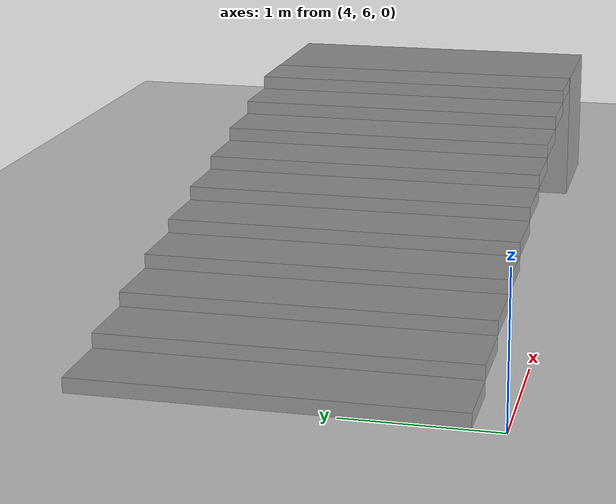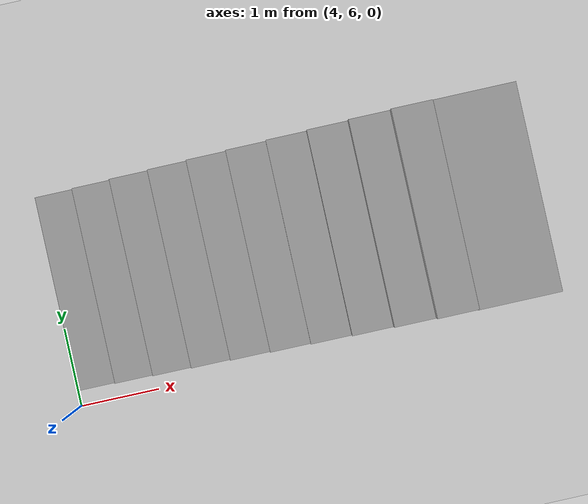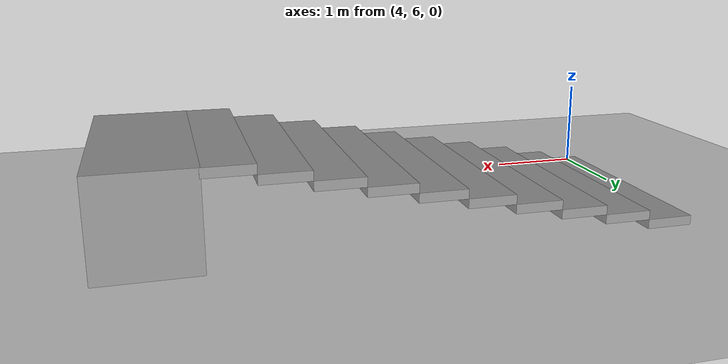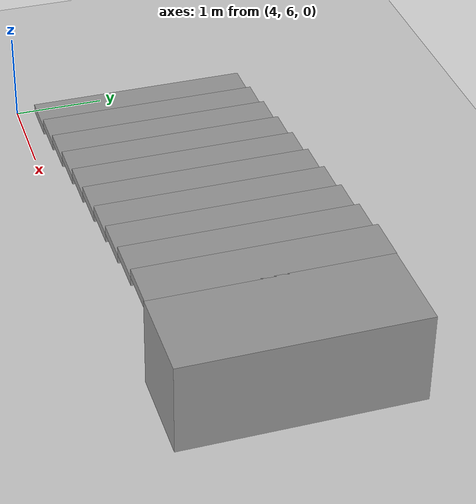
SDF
<sdf version="1.7">
 <world name="default">
  <model name="ground_plane">
   <static>1</static>
   <link name="link">
    <collision name="collision">
     <geometry><plane><normal>0 0 1</normal><size>100 100</size></plane></geometry>
     <surface>
      <contact><collide_bitmask>65535</collide_bitmask></contact>
      <friction><ode><mu>100</mu><mu2>50</mu2></ode></friction>
     </surface>
    </collision>
    <visual name="visual">
     <cast_shadows>0</cast_shadows>
     <geometry><plane><normal>0 0 1</normal><size>100 100</size></plane></geometry>
     <material>
      <script><uri>file://media/materials/scripts/gazebo.material</uri><name>Gazebo/Grey</name></script>
     </material>
    </visual>
   </link>
  </model>
  <model name="deepStairs">
   <link name="Stairs_3">
    <visual name="Stairs_3_Visual_0">
     <pose>1.454 4.7365 0.05 0 -0 0</pose>
     <geometry><box><size>2.5 0.5 0.1</size></box></geometry>
     <material>
      <script><uri>file://media/materials/scripts/gazebo.material</uri><name>Gazebo/Grey</name></script>
      <ambient>1 1 1 1</ambient>
      <shader type="pixel"/>
     </material>
     <meta><layer>0</layer></meta>
    </visual>
    <visual name="Stairs_3_Visual_1">
     <pose>1.454 4.2365 0.15 0 -0 0</pose>
     <geometry><box><size>2.5 0.5 0.1</size></box></geometry>
     <material>
      <script><uri>file://media/materials/scripts/gazebo.material</uri><name>Gazebo/Grey</name></script>
      <ambient>1 1 1 1</ambient>
      <shader type="pixel"/>
     </material>
     <meta><layer>0</layer></meta>
    </visual>
    <visual name="Stairs_3_Visual_2">
     <pose>1.454 3.7365 0.25 0 -0 0</pose>
     <geometry><box><size>2.5 0.5 0.1</size></box></geometry>
     <material>
      <script><uri>file://media/materials/scripts/gazebo.material</uri><name>Gazebo/Grey</name></script>
      <ambient>1 1 1 1</ambient>
      <shader type="pixel"/>
     </material>
     <meta><layer>0</layer></meta>
    </visual>
    <visual name="Stairs_3_Visual_3">
     <pose>1.454 3.2365 0.35 0 -0 0</pose>
     <geometry><box><size>2.5 0.5 0.1</size></box></geometry>
     <material>
      <script><uri>file://media/materials/scripts/gazebo.material</uri><name>Gazebo/Grey</name></script>
      <ambient>1 1 1 1</ambient>
      <shader type="pixel"/>
     </material>
     <meta><layer>0</layer></meta>
    </visual>
    <visual name="Stairs_3_Visual_4">
     <pose>1.454 2.7365 0.45 0 -0 0</pose>
     <geometry><box><size>2.5 0.5 0.1</size></box></geometry>
     <material>
      <script><uri>file://media/materials/scripts/gazebo.material</uri><name>Gazebo/Grey</name></script>
      <ambient>1 1 1 1</ambient>
      <shader type="pixel"/>
     </material>
     <meta><layer>0</layer></meta>
    </visual>
    <visual name="Stairs_3_Visual_5">
     <pose>1.454 2.2365 0.55 0 -0 0</pose>
     <geometry><box><size>2.5 0.5 0.1</size></box></geometry>
     <material>
      <script><uri>file://media/materials/scripts/gazebo.material</uri><name>Gazebo/Grey</name></script>
      <ambient>1 1 1 1</ambient>
      <shader type="pixel"/>
     </material>
     <meta><layer>0</layer></meta>
    </visual>
    <visual name="Stairs_3_Visual_6">
     <pose>1.454 1.7365 0.65 0 -0 0</pose>
     <geometry><box><size>2.5 0.5 0.1</size></box></geometry>
     <material>
      <script><uri>file://media/materials/scripts/gazebo.material</uri><name>Gazebo/Grey</name></script>
      <ambient>1 1 1 1</ambient>
      <shader type="pixel"/>
     </material>
     <meta><layer>0</layer></meta>
    </visual>
    <visual name="Stairs_3_Visual_7">
     <pose>1.454 1.2365 0.75 0 -0 0</pose>
     <geometry><box><size>2.5 0.5 0.1</size></box></geometry>
     <material>
      <script><uri>file://media/materials/scripts/gazebo.material</uri><name>Gazebo/Grey</name></script>
      <ambient>1 1 1 1</ambient>
      <shader type="pixel"/>
     </material>
     <meta><layer>0</layer></meta>
    </visual>
    <visual name="Stairs_3_Visual_8">
     <pose>1.454 0.7365 0.85 0 -0 0</pose>
     <geometry><box><size>2.5 0.5 0.1</size></box></geometry>
     <material>
      <script><uri>file://media/materials/scripts/gazebo.material</uri><name>Gazebo/Grey</name></script>
      <ambient>1 1 1 1</ambient>
      <shader type="pixel"/>
     </material>
     <meta><layer>0</layer></meta>
    </visual>
    <visual name="Stairs_3_Visual_9">
     <pose>1.454 0.2365 0.95 0 -0 0</pose>
     <geometry><box><size>2.5 0.5 0.1</size></box></geometry>
     <material>
      <script><uri>file://media/materials/scripts/gazebo.material</uri><name>Gazebo/Grey</name></script>
      <ambient>1 1 1 1</ambient>
      <shader type="pixel"/>
     </material>
     <meta><layer>0</layer></meta>
    </visual>
    <collision name="Stairs_3_Collision_0">
     <pose>1.454 4.7365 0.05 0 -0 0</pose>
     <geometry><box><size>2.5 0.5 0.1</size></box></geometry>
     <surface>
      <friction>
       <ode><mu>1</mu><mu2>1</mu2><fdir1>0 0 0</fdir1><slip1>0</slip1><slip2>0</slip2></ode>
       <torsional>
        <coefficient>1</coefficient>
        <patch_radius>0</patch_radius>
        <surface_radius>0</surface_radius>
        <use_patch_radius>1</use_patch_radius>
        <ode><slip>0</slip></ode>
       </torsional>
      </friction>
      <bounce><restitution_coefficient>0</restitution_coefficient><threshold>1e+06</threshold></bounce>
      <contact>
       <collide_without_contact>0</collide_without_contact>
       <collide_without_contact_bitmask>1</collide_without_contact_bitmask>
       <collide_bitmask>1</collide_bitmask>
       <ode>
        <soft_cfm>0</soft_cfm>
        <soft_erp>0.2</soft_erp>
        <kp>1e+13</kp>
        <kd>1</kd>
        <max_vel>0.01</max_vel>
        <min_depth>0</min_depth>
       </ode>
       <bullet>
        <split_impulse>1</split_impulse>
        <split_impulse_penetration_threshold>-0.01</split_impulse_penetration_threshold>
        <soft_cfm>0</soft_cfm>
        <soft_erp>0.2</soft_erp>
        <kp>1e+13</kp>
        <kd>1</kd>
       </bullet>
      </contact>
     </surface>
    </collision>
    <collision name="Stairs_3_Collision_1">
     <pose>1.454 4.2365 0.15 0 -0 0</pose>
     <geometry><box><size>2.5 0.5 0.1</size></box></geometry>
     <surface>
      <friction>
       <ode><mu>1</mu><mu2>1</mu2><fdir1>0 0 0</fdir1><slip1>0</slip1><slip2>0</slip2></ode>
       <torsional>
        <coefficient>1</coefficient>
        <patch_radius>0</patch_radius>
        <surface_radius>0</surface_radius>
        <use_patch_radius>1</use_patch_radius>
        <ode><slip>0</slip></ode>
       </torsional>
      </friction>
      <bounce><restitution_coefficient>0</restitution_coefficient><threshold>1e+06</threshold></bounce>
      <contact>
       <collide_without_contact>0</collide_without_contact>
       <collide_without_contact_bitmask>1</collide_without_contact_bitmask>
       <collide_bitmask>1</collide_bitmask>
       <ode>
        <soft_cfm>0</soft_cfm>
        <soft_erp>0.2</soft_erp>
        <kp>1e+13</kp>
        <kd>1</kd>
        <max_vel>0.01</max_vel>
        <min_depth>0</min_depth>
       </ode>
       <bullet>
        <split_impulse>1</split_impulse>
        <split_impulse_penetration_threshold>-0.01</split_impulse_penetration_threshold>
        <soft_cfm>0</soft_cfm>
        <soft_erp>0.2</soft_erp>
        <kp>1e+13</kp>
        <kd>1</kd>
       </bullet>
      </contact>
     </surface>
    </collision>
    <collision name="Stairs_3_Collision_2">
     <pose>1.454 3.7365 0.25 0 -0 0</pose>
     <geometry><box><size>2.5 0.5 0.1</size></box></geometry>
     <surface>
      <friction>
       <ode><mu>1</mu><mu2>1</mu2><fdir1>0 0 0</fdir1><slip1>0</slip1><slip2>0</slip2></ode>
       <torsional>
        <coefficient>1</coefficient>
        <patch_radius>0</patch_radius>
        <surface_radius>0</surface_radius>
        <use_patch_radius>1</use_patch_radius>
        <ode><slip>0</slip></ode>
       </torsional>
      </friction>
      <bounce><restitution_coefficient>0</restitution_coefficient><threshold>1e+06</threshold></bounce>
      <contact>
       <collide_without_contact>0</collide_without_contact>
       <collide_without_contact_bitmask>1</collide_without_contact_bitmask>
       <collide_bitmask>1</collide_bitmask>
       <ode>
        <soft_cfm>0</soft_cfm>
        <soft_erp>0.2</soft_erp>
        <kp>1e+13</kp>
        <kd>1</kd>
        <max_vel>0.01</max_vel>
        <min_depth>0</min_depth>
       </ode>
       <bullet>
        <split_impulse>1</split_impulse>
        <split_impulse_penetration_threshold>-0.01</split_impulse_penetration_threshold>
        <soft_cfm>0</soft_cfm>
        <soft_erp>0.2</soft_erp>
        <kp>1e+13</kp>
        <kd>1</kd>
       </bullet>
      </contact>
     </surface>
    </collision>
    <collision name="Stairs_3_Collision_3">
     <pose>1.454 3.2365 0.35 0 -0 0</pose>
     <geometry><box><size>2.5 0.5 0.1</size></box></geometry>
     <surface>
      <friction>
       <ode><mu>1</mu><mu2>1</mu2><fdir1>0 0 0</fdir1><slip1>0</slip1><slip2>0</slip2></ode>
       <torsional>
        <coefficient>1</coefficient>
        <patch_radius>0</patch_radius>
        <surface_radius>0</surface_radius>
        <use_patch_radius>1</use_patch_radius>
        <ode><slip>0</slip></ode>
       </torsional>
      </friction>
      <bounce><restitution_coefficient>0</restitution_coefficient><threshold>1e+06</threshold></bounce>
      <contact>
       <collide_without_contact>0</collide_without_contact>
       <collide_without_contact_bitmask>1</collide_without_contact_bitmask>
       <collide_bitmask>1</collide_bitmask>
       <ode>
        <soft_cfm>0</soft_cfm>
        <soft_erp>0.2</soft_erp>
        <kp>1e+13</kp>
        <kd>1</kd>
        <max_vel>0.01</max_vel>
        <min_depth>0</min_depth>
       </ode>
       <bullet>
        <split_impulse>1</split_impulse>
        <split_impulse_penetration_threshold>-0.01</split_impulse_penetration_threshold>
        <soft_cfm>0</soft_cfm>
        <soft_erp>0.2</soft_erp>
        <kp>1e+13</kp>
        <kd>1</kd>
       </bullet>
      </contact>
     </surface>
    </collision>
    <collision name="Stairs_3_Collision_4">
     <pose>1.454 2.7365 0.45 0 -0 0</pose>
     <geometry><box><size>2.5 0.5 0.1</size></box></geometry>
     <surface>
      <friction>
       <ode><mu>1</mu><mu2>1</mu2><fdir1>0 0 0</fdir1><slip1>0</slip1><slip2>0</slip2></ode>
       <torsional>
        <coefficient>1</coefficient>
        <patch_radius>0</patch_radius>
        <surface_radius>0</surface_radius>
        <use_patch_radius>1</use_patch_radius>
        <ode><slip>0</slip></ode>
       </torsional>
      </friction>
      <bounce><restitution_coefficient>0</restitution_coefficient><threshold>1e+06</threshold></bounce>
      <contact>
       <collide_without_contact>0</collide_without_contact>
       <collide_without_contact_bitmask>1</collide_without_contact_bitmask>
       <collide_bitmask>1</collide_bitmask>
       <ode>
        <soft_cfm>0</soft_cfm>
        <soft_erp>0.2</soft_erp>
        <kp>1e+13</kp>
        <kd>1</kd>
        <max_vel>0.01</max_vel>
        <min_depth>0</min_depth>
       </ode>
       <bullet>
        <split_impulse>1</split_impulse>
        <split_impulse_penetration_threshold>-0.01</split_impulse_penetration_threshold>
        <soft_cfm>0</soft_cfm>
        <soft_erp>0.2</soft_erp>
        <kp>1e+13</kp>
        <kd>1</kd>
       </bullet>
      </contact>
     </surface>
    </collision>
    <collision name="Stairs_3_Collision_5">
     <pose>1.454 2.2365 0.55 0 -0 0</pose>
     <geometry><box><size>2.5 0.5 0.1</size></box></geometry>
     <surface>
      <friction>
       <ode><mu>1</mu><mu2>1</mu2><fdir1>0 0 0</fdir1><slip1>0</slip1><slip2>0</slip2></ode>
       <torsional>
        <coefficient>1</coefficient>
        <patch_radius>0</patch_radius>
        <surface_radius>0</surface_radius>
        <use_patch_radius>1</use_patch_radius>
        <ode><slip>0</slip></ode>
       </torsional>
      </friction>
      <bounce><restitution_coefficient>0</restitution_coefficient><threshold>1e+06</threshold></bounce>
      <contact>
       <collide_without_contact>0</collide_without_contact>
       <collide_without_contact_bitmask>1</collide_without_contact_bitmask>
       <collide_bitmask>1</collide_bitmask>
       <ode>
        <soft_cfm>0</soft_cfm>
        <soft_erp>0.2</soft_erp>
        <kp>1e+13</kp>
        <kd>1</kd>
        <max_vel>0.01</max_vel>
        <min_depth>0</min_depth>
       </ode>
       <bullet>
        <split_impulse>1</split_impulse>
        <split_impulse_penetration_threshold>-0.01</split_impulse_penetration_threshold>
        <soft_cfm>0</soft_cfm>
        <soft_erp>0.2</soft_erp>
        <kp>1e+13</kp>
        <kd>1</kd>
       </bullet>
      </contact>
     </surface>
    </collision>
    <collision name="Stairs_3_Collision_6">
     <pose>1.454 1.7365 0.65 0 -0 0</pose>
     <geometry><box><size>2.5 0.5 0.1</size></box></geometry>
     <surface>
      <friction>
       <ode><mu>1</mu><mu2>1</mu2><fdir1>0 0 0</fdir1><slip1>0</slip1><slip2>0</slip2></ode>
       <torsional>
        <coefficient>1</coefficient>
        <patch_radius>0</patch_radius>
        <surface_radius>0</surface_radius>
        <use_patch_radius>1</use_patch_radius>
        <ode><slip>0</slip></ode>
       </torsional>
      </friction>
      <bounce><restitution_coefficient>0</restitution_coefficient><threshold>1e+06</threshold></bounce>
      <contact>
       <collide_without_contact>0</collide_without_contact>
       <collide_without_contact_bitmask>1</collide_without_contact_bitmask>
       <collide_bitmask>1</collide_bitmask>
       <ode>
        <soft_cfm>0</soft_cfm>
        <soft_erp>0.2</soft_erp>
        <kp>1e+13</kp>
        <kd>1</kd>
        <max_vel>0.01</max_vel>
        <min_depth>0</min_depth>
       </ode>
       <bullet>
        <split_impulse>1</split_impulse>
        <split_impulse_penetration_threshold>-0.01</split_impulse_penetration_threshold>
        <soft_cfm>0</soft_cfm>
        <soft_erp>0.2</soft_erp>
        <kp>1e+13</kp>
        <kd>1</kd>
       </bullet>
      </contact>
     </surface>
    </collision>
    <collision name="Stairs_3_Collision_7">
     <pose>1.454 1.2365 0.75 0 -0 0</pose>
     <geometry><box><size>2.5 0.5 0.1</size></box></geometry>
     <surface>
      <friction>
       <ode><mu>1</mu><mu2>1</mu2><fdir1>0 0 0</fdir1><slip1>0</slip1><slip2>0</slip2></ode>
       <torsional>
        <coefficient>1</coefficient>
        <patch_radius>0</patch_radius>
        <surface_radius>0</surface_radius>
        <use_patch_radius>1</use_patch_radius>
        <ode><slip>0</slip></ode>
       </torsional>
      </friction>
      <bounce><restitution_coefficient>0</restitution_coefficient><threshold>1e+06</threshold></bounce>
      <contact>
       <collide_without_contact>0</collide_without_contact>
       <collide_without_contact_bitmask>1</collide_without_contact_bitmask>
       <collide_bitmask>1</collide_bitmask>
       <ode>
        <soft_cfm>0</soft_cfm>
        <soft_erp>0.2</soft_erp>
        <kp>1e+13</kp>
        <kd>1</kd>
        <max_vel>0.01</max_vel>
        <min_depth>0</min_depth>
       </ode>
       <bullet>
        <split_impulse>1</split_impulse>
        <split_impulse_penetration_threshold>-0.01</split_impulse_penetration_threshold>
        <soft_cfm>0</soft_cfm>
        <soft_erp>0.2</soft_erp>
        <kp>1e+13</kp>
        <kd>1</kd>
       </bullet>
      </contact>
     </surface>
    </collision>
    <collision name="Stairs_3_Collision_8">
     <pose>1.454 0.7365 0.85 0 -0 0</pose>
     <geometry><box><size>2.5 0.5 0.1</size></box></geometry>
     <surface>
      <friction>
       <ode><mu>1</mu><mu2>1</mu2><fdir1>0 0 0</fdir1><slip1>0</slip1><slip2>0</slip2></ode>
       <torsional>
        <coefficient>1</coefficient>
        <patch_radius>0</patch_radius>
        <surface_radius>0</surface_radius>
        <use_patch_radius>1</use_patch_radius>
        <ode><slip>0</slip></ode>
       </torsional>
      </friction>
      <bounce><restitution_coefficient>0</restitution_coefficient><threshold>1e+06</threshold></bounce>
      <contact>
       <collide_without_contact>0</collide_without_contact>
       <collide_without_contact_bitmask>1</collide_without_contact_bitmask>
       <collide_bitmask>1</collide_bitmask>
       <ode>
        <soft_cfm>0</soft_cfm>
        <soft_erp>0.2</soft_erp>
        <kp>1e+13</kp>
        <kd>1</kd>
        <max_vel>0.01</max_vel>
        <min_depth>0</min_depth>
       </ode>
       <bullet>
        <split_impulse>1</split_impulse>
        <split_impulse_penetration_threshold>-0.01</split_impulse_penetration_threshold>
        <soft_cfm>0</soft_cfm>
        <soft_erp>0.2</soft_erp>
        <kp>1e+13</kp>
        <kd>1</kd>
       </bullet>
      </contact>
     </surface>
    </collision>
    <collision name="Stairs_3_Collision_9">
     <pose>1.454 0.2365 0.95 0 -0 0</pose>
     <geometry><box><size>2.5 0.5 0.1</size></box></geometry>
     <surface>
      <friction>
       <ode><mu>1</mu><mu2>1</mu2><fdir1>0 0 0</fdir1><slip1>0</slip1><slip2>0</slip2></ode>
       <torsional>
        <coefficient>1</coefficient>
        <patch_radius>0</patch_radius>
        <surface_radius>0</surface_radius>
        <use_patch_radius>1</use_patch_radius>
        <ode><slip>0</slip></ode>
       </torsional>
      </friction>
      <bounce><restitution_coefficient>0</restitution_coefficient><threshold>1e+06</threshold></bounce>
      <contact>
       <collide_without_contact>0</collide_without_contact>
       <collide_without_contact_bitmask>1</collide_without_contact_bitmask>
       <collide_bitmask>1</collide_bitmask>
       <ode>
        <soft_cfm>0</soft_cfm>
        <soft_erp>0.2</soft_erp>
        <kp>1e+13</kp>
        <kd>1</kd>
        <max_vel>0.01</max_vel>
        <min_depth>0</min_depth>
       </ode>
       <bullet>
        <split_impulse>1</split_impulse>
        <split_impulse_penetration_threshold>-0.01</split_impulse_penetration_threshold>
        <soft_cfm>0</soft_cfm>
        <soft_erp>0.2</soft_erp>
        <kp>1e+13</kp>
        <kd>1</kd>
       </bullet>
      </contact>
     </surface>
    </collision>
   </link>
   <link name="link_0">
    <inertial>
     <mass>0</mass>
     <inertia><ixx>0</ixx><ixy>0</ixy><ixz>0</ixz><iyy>0</iyy><iyz>0</iyz><izz>0</izz></inertia>
    </inertial>
    <pose>1.45 -0.499999 0.5 0 0 -1.57</pose>
    <gravity>0</gravity>
    <visual name="visual">
     <geometry><box><size>1 2.5 1</size></box></geometry>
     <material>
      <lighting>1</lighting>
      <script><uri>file://media/materials/scripts/gazebo.material</uri><name>Gazebo/Grey</name></script>
      <shader type="pixel"><normal_map>__default__</normal_map></shader>
      <ambient>0.3 0.3 0.3 1</ambient>
      <diffuse>0.7 0.7 0.7 1</diffuse>
      <specular>0.01 0.01 0.01 1</specular>
      <emissive>0 0 0 1</emissive>
     </material>
    </visual>
    <collision name="collision">
     <geometry><box><size>1 1 1</size></box></geometry>
     <surface>
      <friction>
       <ode><mu>1</mu><mu2>1</mu2><fdir1>0 0 0</fdir1><slip1>0</slip1><slip2>0</slip2></ode>
       <torsional>
        <coefficient>1</coefficient>
        <patch_radius>0</patch_radius>
        <surface_radius>0</surface_radius>
        <use_patch_radius>1</use_patch_radius>
        <ode><slip>0</slip></ode>
       </torsional>
      </friction>
      <bounce><restitution_coefficient>0</restitution_coefficient><threshold>1e+06</threshold></bounce>
      <contact>
       <collide_without_contact>0</collide_without_contact>
       <collide_without_contact_bitmask>1</collide_without_contact_bitmask>
       <collide_bitmask>1</collide_bitmask>
       <ode>
        <soft_cfm>0</soft_cfm>
        <soft_erp>0.2</soft_erp>
        <kp>1e+13</kp>
        <kd>1</kd>
        <max_vel>0.01</max_vel>
        <min_depth>0</min_depth>
       </ode>
       <bullet>
        <split_impulse>1</split_impulse>
        <split_impulse_penetration_threshold>-0.01</split_impulse_penetration_threshold>
        <soft_cfm>0</soft_cfm>
        <soft_erp>0.2</soft_erp>
        <kp>1e+13</kp>
        <kd>1</kd>
       </bullet>
      </contact>
     </surface>
    </collision>
   </link>
   <static>1</static>
   <pose>9 6 0 0 -0 1.57</pose>
  </model>
 </world>
</sdf>
